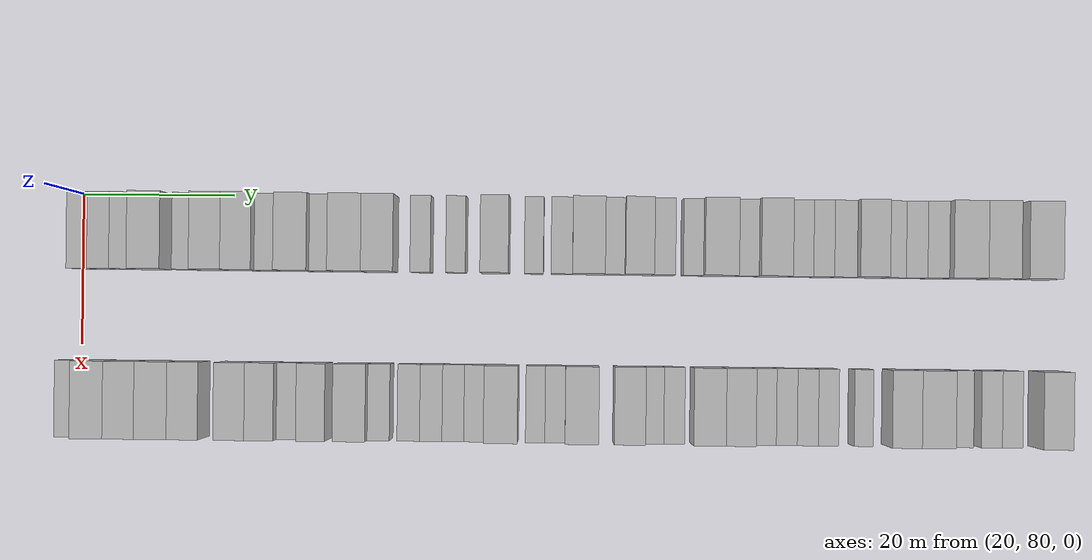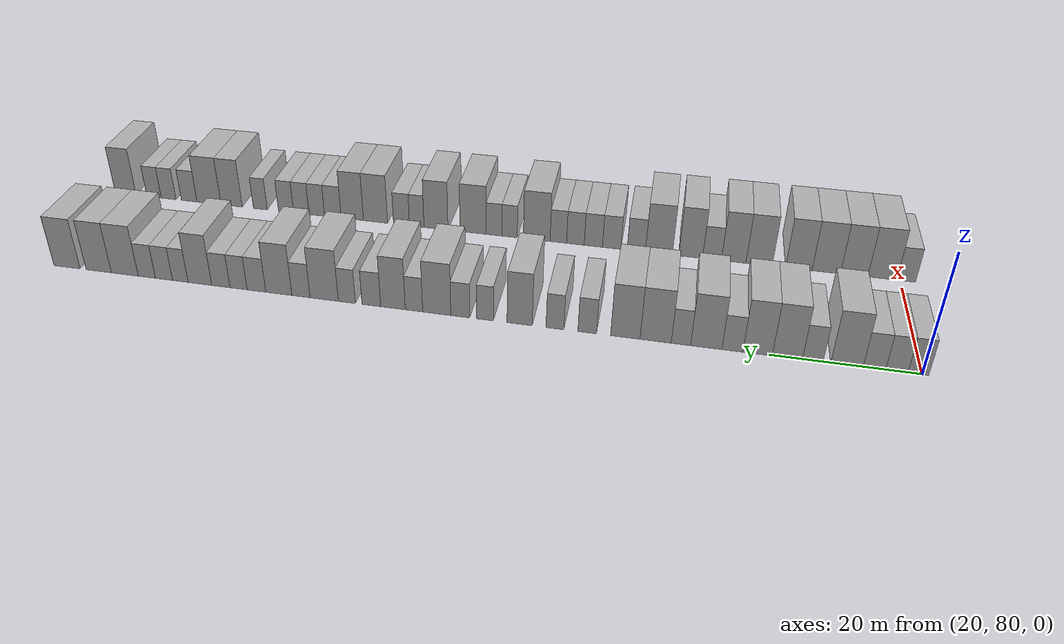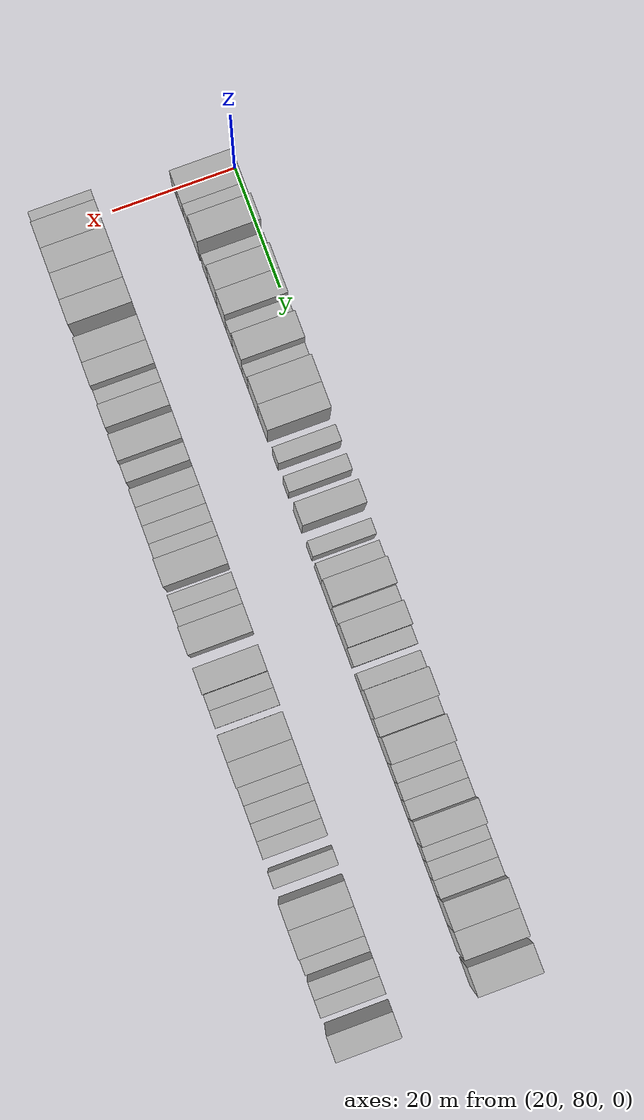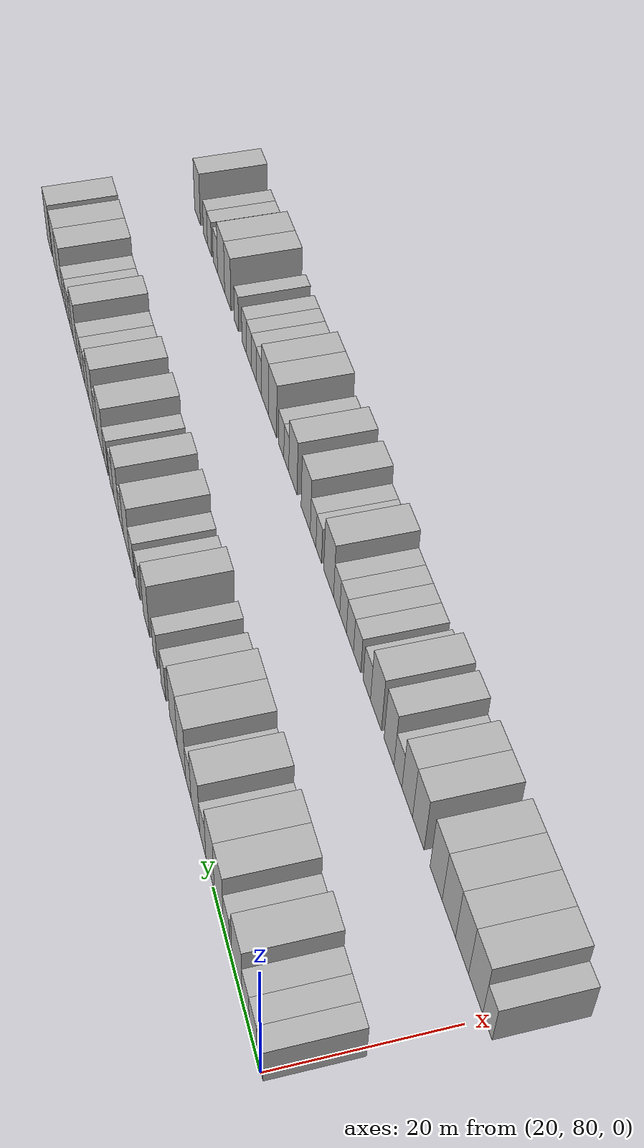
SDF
<sdf version="1.6">
 <world name="default">
  <model name="building_70">
   <static>1</static>
   <pose>25.0000 80.5008 0 0.000000 0.000000 0.000000</pose>
   <link name="link">
    <pose>0 0 3.00 0 0 0</pose>
    <collision name="collision"><geometry><box><size>10.0000 2.6687 6.0000</size></box></geometry></collision>
    <visual name="visual">
     <cast_shadows>0</cast_shadows>
     <geometry><box><size>10.0000 2.6687 6.0000</size></box></geometry>
     <material>
      <script>
       <uri>model://HANNAS_wall/materials/scripts</uri>
       <uri>model://HANNAS_wall/materials/textures</uri>
       <name>vrc/HANNAS_wall</name>
      </script>
     </material>
    </visual>
   </link>
  </model>
  <model name="building_71">
   <static>1</static>
   <pose>25.0000 83.2736 0 0.000000 0.000000 0.000000</pose>
   <link name="link">
    <pose>0 0 3.00 0 0 0</pose>
    <collision name="collision"><geometry><box><size>10.0000 2.8769 6.0000</size></box></geometry></collision>
    <visual name="visual">
     <cast_shadows>0</cast_shadows>
     <geometry><box><size>10.0000 2.8769 6.0000</size></box></geometry>
     <material>
      <script>
       <uri>model://HANNAS_wall/materials/scripts</uri>
       <uri>model://HANNAS_wall/materials/textures</uri>
       <name>vrc/HANNAS_wall</name>
      </script>
     </material>
    </visual>
   </link>
  </model>
  <model name="building_72">
   <static>1</static>
   <pose>25.0000 86.1698 0 0.000000 0.000000 0.000000</pose>
   <link name="link">
    <pose>0 0 3.00 0 0 0</pose>
    <collision name="collision"><geometry><box><size>10.0000 2.9155 6.0000</size></box></geometry></collision>
    <visual name="visual">
     <cast_shadows>0</cast_shadows>
     <geometry><box><size>10.0000 2.9155 6.0000</size></box></geometry>
     <material>
      <script>
       <uri>model://HANNAS_wall/materials/scripts</uri>
       <uri>model://HANNAS_wall/materials/textures</uri>
       <name>vrc/HANNAS_wall</name>
      </script>
     </material>
    </visual>
   </link>
  </model>
  <model name="building_73">
   <static>1</static>
   <pose>25.0000 89.7515 0 0.000000 0.000000 0.000000</pose>
   <link name="link">
    <pose>0 0 4.50 0 0 0</pose>
    <collision name="collision"><geometry><box><size>10.0000 4.2479 9.0000</size></box></geometry></collision>
    <visual name="visual">
     <cast_shadows>0</cast_shadows>
     <geometry><box><size>10.0000 4.2479 9.0000</size></box></geometry>
     <material>
      <script>
       <uri>model://HANNAS_wall/materials/scripts</uri>
       <uri>model://HANNAS_wall/materials/textures</uri>
       <name>vrc/HANNAS_wall</name>
      </script>
     </material>
    </visual>
   </link>
  </model>
  <model name="building_74">
   <static>1</static>
   <pose>25.0000 94.2457 0 0.000000 0.000000 0.000000</pose>
   <link name="link">
    <pose>0 0 3.00 0 0 0</pose>
    <collision name="collision"><geometry><box><size>10.0000 2.7406 6.0000</size></box></geometry></collision>
    <visual name="visual">
     <cast_shadows>0</cast_shadows>
     <geometry><box><size>10.0000 2.7406 6.0000</size></box></geometry>
     <material>
      <script>
       <uri>model://HANNAS_wall/materials/scripts</uri>
       <uri>model://HANNAS_wall/materials/textures</uri>
       <name>vrc/HANNAS_wall</name>
      </script>
     </material>
    </visual>
   </link>
  </model>
  <model name="building_75">
   <static>1</static>
   <pose>25.0000 97.6282 0 0.000000 0.000000 0.000000</pose>
   <link name="link">
    <pose>0 0 4.50 0 0 0</pose>
    <collision name="collision"><geometry><box><size>10.0000 4.0244 9.0000</size></box></geometry></collision>
    <visual name="visual">
     <cast_shadows>0</cast_shadows>
     <geometry><box><size>10.0000 4.0244 9.0000</size></box></geometry>
     <material>
      <script>
       <uri>model://HANNAS_wall/materials/scripts</uri>
       <uri>model://HANNAS_wall/materials/textures</uri>
       <name>vrc/HANNAS_wall</name>
      </script>
     </material>
    </visual>
   </link>
  </model>
  <model name="building_76">
   <static>1</static>
   <pose>25.0000 101.6222 0 0.000000 0.000000 0.000000</pose>
   <link name="link">
    <pose>0 0 4.50 0 0 0</pose>
    <collision name="collision"><geometry><box><size>10.0000 3.9638 9.0000</size></box></geometry></collision>
    <visual name="visual">
     <cast_shadows>0</cast_shadows>
     <geometry><box><size>10.0000 3.9638 9.0000</size></box></geometry>
     <material>
      <script>
       <uri>model://HANNAS_wall/materials/scripts</uri>
       <uri>model://HANNAS_wall/materials/textures</uri>
       <name>vrc/HANNAS_wall</name>
      </script>
     </material>
    </visual>
   </link>
  </model>
  <model name="building_77">
   <static>1</static>
   <pose>25.0000 105.0275 0 0.000000 0.000000 0.000000</pose>
   <link name="link">
    <pose>0 0 3.00 0 0 0</pose>
    <collision name="collision"><geometry><box><size>10.0000 2.8468 6.0000</size></box></geometry></collision>
    <visual name="visual">
     <cast_shadows>0</cast_shadows>
     <geometry><box><size>10.0000 2.8468 6.0000</size></box></geometry>
     <material>
      <script>
       <uri>model://HANNAS_wall/materials/scripts</uri>
       <uri>model://HANNAS_wall/materials/textures</uri>
       <name>vrc/HANNAS_wall</name>
      </script>
     </material>
    </visual>
   </link>
  </model>
  <model name="building_78">
   <static>1</static>
   <pose>25.0000 108.5908 0 0.000000 0.000000 0.000000</pose>
   <link name="link">
    <pose>0 0 4.50 0 0 0</pose>
    <collision name="collision"><geometry><box><size>10.0000 4.2796 9.0000</size></box></geometry></collision>
    <visual name="visual">
     <cast_shadows>0</cast_shadows>
     <geometry><box><size>10.0000 4.2796 9.0000</size></box></geometry>
     <material>
      <script>
       <uri>model://HANNAS_wall/materials/scripts</uri>
       <uri>model://HANNAS_wall/materials/textures</uri>
       <name>vrc/HANNAS_wall</name>
      </script>
     </material>
    </visual>
   </link>
  </model>
  <model name="building_79">
   <static>1</static>
   <pose>25.0000 112.0614 0 0.000000 0.000000 0.000000</pose>
   <link name="link">
    <pose>0 0 3.00 0 0 0</pose>
    <collision name="collision"><geometry><box><size>10.0000 2.6617 6.0000</size></box></geometry></collision>
    <visual name="visual">
     <cast_shadows>0</cast_shadows>
     <geometry><box><size>10.0000 2.6617 6.0000</size></box></geometry>
     <material>
      <script>
       <uri>model://HANNAS_wall/materials/scripts</uri>
       <uri>model://HANNAS_wall/materials/textures</uri>
       <name>vrc/HANNAS_wall</name>
      </script>
     </material>
    </visual>
   </link>
  </model>
  <model name="building_80">
   <static>1</static>
   <pose>25.0000 115.5644 0 0.000000 0.000000 0.000000</pose>
   <link name="link">
    <pose>0 0 4.50 0 0 0</pose>
    <collision name="collision"><geometry><box><size>10.0000 4.3442 9.0000</size></box></geometry></collision>
    <visual name="visual">
     <cast_shadows>0</cast_shadows>
     <geometry><box><size>10.0000 4.3442 9.0000</size></box></geometry>
     <material>
      <script>
       <uri>model://HANNAS_wall/materials/scripts</uri>
       <uri>model://HANNAS_wall/materials/textures</uri>
       <name>vrc/HANNAS_wall</name>
      </script>
     </material>
    </visual>
   </link>
  </model>
  <model name="building_81">
   <static>1</static>
   <pose>25.0000 119.8007 0 0.000000 0.000000 0.000000</pose>
   <link name="link">
    <pose>0 0 4.50 0 0 0</pose>
    <collision name="collision"><geometry><box><size>10.0000 4.1285 9.0000</size></box></geometry></collision>
    <visual name="visual">
     <cast_shadows>0</cast_shadows>
     <geometry><box><size>10.0000 4.1285 9.0000</size></box></geometry>
     <material>
      <script>
       <uri>model://HANNAS_wall/materials/scripts</uri>
       <uri>model://HANNAS_wall/materials/textures</uri>
       <name>vrc/HANNAS_wall</name>
      </script>
     </material>
    </visual>
   </link>
  </model>
  <model name="building_82">
   <static>1</static>
   <pose>25.0000 125.1866 0 0.000000 0.000000 0.000000</pose>
   <link name="link">
    <pose>0 0 3.00 0 0 0</pose>
    <collision name="collision"><geometry><box><size>10.0000 2.6433 6.0000</size></box></geometry></collision>
    <visual name="visual">
     <cast_shadows>0</cast_shadows>
     <geometry><box><size>10.0000 2.6433 6.0000</size></box></geometry>
     <material>
      <script>
       <uri>model://HANNAS_wall/materials/scripts</uri>
       <uri>model://HANNAS_wall/materials/textures</uri>
       <name>vrc/HANNAS_wall</name>
      </script>
     </material>
    </visual>
   </link>
  </model>
  <model name="building_83">
   <static>1</static>
   <pose>25.0000 129.7910 0 0.000000 0.000000 0.000000</pose>
   <link name="link">
    <pose>0 0 3.00 0 0 0</pose>
    <collision name="collision"><geometry><box><size>10.0000 2.5655 6.0000</size></box></geometry></collision>
    <visual name="visual">
     <cast_shadows>0</cast_shadows>
     <geometry><box><size>10.0000 2.5655 6.0000</size></box></geometry>
     <material>
      <script>
       <uri>model://HANNAS_wall/materials/scripts</uri>
       <uri>model://HANNAS_wall/materials/textures</uri>
       <name>vrc/HANNAS_wall</name>
      </script>
     </material>
    </visual>
   </link>
  </model>
  <model name="building_84">
   <static>1</static>
   <pose>25.0000 134.9044 0 0.000000 0.000000 0.000000</pose>
   <link name="link">
    <pose>0 0 4.50 0 0 0</pose>
    <collision name="collision"><geometry><box><size>10.0000 3.6614 9.0000</size></box></geometry></collision>
    <visual name="visual">
     <cast_shadows>0</cast_shadows>
     <geometry><box><size>10.0000 3.6614 9.0000</size></box></geometry>
     <material>
      <script>
       <uri>model://HANNAS_wall/materials/scripts</uri>
       <uri>model://HANNAS_wall/materials/textures</uri>
       <name>vrc/HANNAS_wall</name>
      </script>
     </material>
    </visual>
   </link>
  </model>
  <model name="building_85">
   <static>1</static>
   <pose>25.0000 139.9746 0 0.000000 0.000000 0.000000</pose>
   <link name="link">
    <pose>0 0 3.00 0 0 0</pose>
    <collision name="collision"><geometry><box><size>10.0000 2.4791 6.0000</size></box></geometry></collision>
    <visual name="visual">
     <cast_shadows>0</cast_shadows>
     <geometry><box><size>10.0000 2.4791 6.0000</size></box></geometry>
     <material>
      <script>
       <uri>model://HANNAS_wall/materials/scripts</uri>
       <uri>model://HANNAS_wall/materials/textures</uri>
       <name>vrc/HANNAS_wall</name>
      </script>
     </material>
    </visual>
   </link>
  </model>
  <model name="building_86">
   <static>1</static>
   <pose>25.0000 143.6171 0 0.000000 0.000000 0.000000</pose>
   <link name="link">
    <pose>0 0 3.00 0 0 0</pose>
    <collision name="collision"><geometry><box><size>10.0000 2.8058 6.0000</size></box></geometry></collision>
    <visual name="visual">
     <cast_shadows>0</cast_shadows>
     <geometry><box><size>10.0000 2.8058 6.0000</size></box></geometry>
     <material>
      <script>
       <uri>model://HANNAS_wall/materials/scripts</uri>
       <uri>model://HANNAS_wall/materials/textures</uri>
       <name>vrc/HANNAS_wall</name>
      </script>
     </material>
    </visual>
   </link>
  </model>
  <model name="building_87">
   <static>1</static>
   <pose>25.0000 147.1233 0 0.000000 0.000000 0.000000</pose>
   <link name="link">
    <pose>0 0 4.50 0 0 0</pose>
    <collision name="collision"><geometry><box><size>10.0000 4.2065 9.0000</size></box></geometry></collision>
    <visual name="visual">
     <cast_shadows>0</cast_shadows>
     <geometry><box><size>10.0000 4.2065 9.0000</size></box></geometry>
     <material>
      <script>
       <uri>model://HANNAS_wall/materials/scripts</uri>
       <uri>model://HANNAS_wall/materials/textures</uri>
       <name>vrc/HANNAS_wall</name>
      </script>
     </material>
    </visual>
   </link>
  </model>
  <model name="building_88">
   <static>1</static>
   <pose>25.0000 150.5314 0 0.000000 0.000000 0.000000</pose>
   <link name="link">
    <pose>0 0 3.00 0 0 0</pose>
    <collision name="collision"><geometry><box><size>10.0000 2.6097 6.0000</size></box></geometry></collision>
    <visual name="visual">
     <cast_shadows>0</cast_shadows>
     <geometry><box><size>10.0000 2.6097 6.0000</size></box></geometry>
     <material>
      <script>
       <uri>model://HANNAS_wall/materials/scripts</uri>
       <uri>model://HANNAS_wall/materials/textures</uri>
       <name>vrc/HANNAS_wall</name>
      </script>
     </material>
    </visual>
   </link>
  </model>
  <model name="building_89">
   <static>1</static>
   <pose>25.0000 153.6996 0 0.000000 0.000000 0.000000</pose>
   <link name="link">
    <pose>0 0 4.50 0 0 0</pose>
    <collision name="collision"><geometry><box><size>10.0000 3.7268 9.0000</size></box></geometry></collision>
    <visual name="visual">
     <cast_shadows>0</cast_shadows>
     <geometry><box><size>10.0000 3.7268 9.0000</size></box></geometry>
     <material>
      <script>
       <uri>model://HANNAS_wall/materials/scripts</uri>
       <uri>model://HANNAS_wall/materials/textures</uri>
       <name>vrc/HANNAS_wall</name>
      </script>
     </material>
    </visual>
   </link>
  </model>
  <model name="building_90">
   <static>1</static>
   <pose>25.0000 156.9923 0 0.000000 0.000000 0.000000</pose>
   <link name="link">
    <pose>0 0 3.00 0 0 0</pose>
    <collision name="collision"><geometry><box><size>10.0000 2.8586 6.0000</size></box></geometry></collision>
    <visual name="visual">
     <cast_shadows>0</cast_shadows>
     <geometry><box><size>10.0000 2.8586 6.0000</size></box></geometry>
     <material>
      <script>
       <uri>model://HANNAS_wall/materials/scripts</uri>
       <uri>model://HANNAS_wall/materials/textures</uri>
       <name>vrc/HANNAS_wall</name>
      </script>
     </material>
    </visual>
   </link>
  </model>
  <model name="building_91">
   <static>1</static>
   <pose>25.0000 160.7405 0 0.000000 0.000000 0.000000</pose>
   <link name="link">
    <pose>0 0 3.00 0 0 0</pose>
    <collision name="collision"><geometry><box><size>10.0000 2.6378 6.0000</size></box></geometry></collision>
    <visual name="visual">
     <cast_shadows>0</cast_shadows>
     <geometry><box><size>10.0000 2.6378 6.0000</size></box></geometry>
     <material>
      <script>
       <uri>model://HANNAS_wall/materials/scripts</uri>
       <uri>model://HANNAS_wall/materials/textures</uri>
       <name>vrc/HANNAS_wall</name>
      </script>
     </material>
    </visual>
   </link>
  </model>
  <model name="building_92">
   <static>1</static>
   <pose>25.0000 164.2541 0 0.000000 0.000000 0.000000</pose>
   <link name="link">
    <pose>0 0 4.50 0 0 0</pose>
    <collision name="collision"><geometry><box><size>10.0000 4.3893 9.0000</size></box></geometry></collision>
    <visual name="visual">
     <cast_shadows>0</cast_shadows>
     <geometry><box><size>10.0000 4.3893 9.0000</size></box></geometry>
     <material>
      <script>
       <uri>model://HANNAS_wall/materials/scripts</uri>
       <uri>model://HANNAS_wall/materials/textures</uri>
       <name>vrc/HANNAS_wall</name>
      </script>
     </material>
    </visual>
   </link>
  </model>
  <model name="building_93">
   <static>1</static>
   <pose>25.0000 167.8694 0 0.000000 0.000000 0.000000</pose>
   <link name="link">
    <pose>0 0 3.00 0 0 0</pose>
    <collision name="collision"><geometry><box><size>10.0000 2.8413 6.0000</size></box></geometry></collision>
    <visual name="visual">
     <cast_shadows>0</cast_shadows>
     <geometry><box><size>10.0000 2.8413 6.0000</size></box></geometry>
     <material>
      <script>
       <uri>model://HANNAS_wall/materials/scripts</uri>
       <uri>model://HANNAS_wall/materials/textures</uri>
       <name>vrc/HANNAS_wall</name>
      </script>
     </material>
    </visual>
   </link>
  </model>
  <model name="building_94">
   <static>1</static>
   <pose>25.0000 171.3452 0 0.000000 0.000000 0.000000</pose>
   <link name="link">
    <pose>0 0 4.50 0 0 0</pose>
    <collision name="collision"><geometry><box><size>10.0000 4.1103 9.0000</size></box></geometry></collision>
    <visual name="visual">
     <cast_shadows>0</cast_shadows>
     <geometry><box><size>10.0000 4.1103 9.0000</size></box></geometry>
     <material>
      <script>
       <uri>model://HANNAS_wall/materials/scripts</uri>
       <uri>model://HANNAS_wall/materials/textures</uri>
       <name>vrc/HANNAS_wall</name>
      </script>
     </material>
    </visual>
   </link>
  </model>
  <model name="building_95">
   <static>1</static>
   <pose>25.0000 174.8826 0 0.000000 0.000000 0.000000</pose>
   <link name="link">
    <pose>0 0 3.00 0 0 0</pose>
    <collision name="collision"><geometry><box><size>10.0000 2.9645 6.0000</size></box></geometry></collision>
    <visual name="visual">
     <cast_shadows>0</cast_shadows>
     <geometry><box><size>10.0000 2.9645 6.0000</size></box></geometry>
     <material>
      <script>
       <uri>model://HANNAS_wall/materials/scripts</uri>
       <uri>model://HANNAS_wall/materials/textures</uri>
       <name>vrc/HANNAS_wall</name>
      </script>
     </material>
    </visual>
   </link>
  </model>
  <model name="building_96">
   <static>1</static>
   <pose>25.0000 177.7312 0 0.000000 0.000000 0.000000</pose>
   <link name="link">
    <pose>0 0 3.00 0 0 0</pose>
    <collision name="collision"><geometry><box><size>10.0000 2.7327 6.0000</size></box></geometry></collision>
    <visual name="visual">
     <cast_shadows>0</cast_shadows>
     <geometry><box><size>10.0000 2.7327 6.0000</size></box></geometry>
     <material>
      <script>
       <uri>model://HANNAS_wall/materials/scripts</uri>
       <uri>model://HANNAS_wall/materials/textures</uri>
       <name>vrc/HANNAS_wall</name>
      </script>
     </material>
    </visual>
   </link>
  </model>
  <model name="building_97">
   <static>1</static>
   <pose>25.0000 180.5658 0 0.000000 0.000000 0.000000</pose>
   <link name="link">
    <pose>0 0 3.00 0 0 0</pose>
    <collision name="collision"><geometry><box><size>10.0000 2.9365 6.0000</size></box></geometry></collision>
    <visual name="visual">
     <cast_shadows>0</cast_shadows>
     <geometry><box><size>10.0000 2.9365 6.0000</size></box></geometry>
     <material>
      <script>
       <uri>model://HANNAS_wall/materials/scripts</uri>
       <uri>model://HANNAS_wall/materials/textures</uri>
       <name>vrc/HANNAS_wall</name>
      </script>
     </material>
    </visual>
   </link>
  </model>
  <model name="building_98">
   <static>1</static>
   <pose>25.0000 183.9489 0 0.000000 0.000000 0.000000</pose>
   <link name="link">
    <pose>0 0 4.50 0 0 0</pose>
    <collision name="collision"><geometry><box><size>10.0000 3.8297 9.0000</size></box></geometry></collision>
    <visual name="visual">
     <cast_shadows>0</cast_shadows>
     <geometry><box><size>10.0000 3.8297 9.0000</size></box></geometry>
     <material>
      <script>
       <uri>model://HANNAS_wall/materials/scripts</uri>
       <uri>model://HANNAS_wall/materials/textures</uri>
       <name>vrc/HANNAS_wall</name>
      </script>
     </material>
    </visual>
   </link>
  </model>
  <model name="building_99">
   <static>1</static>
   <pose>25.0000 187.1322 0 0.000000 0.000000 0.000000</pose>
   <link name="link">
    <pose>0 0 3.00 0 0 0</pose>
    <collision name="collision"><geometry><box><size>10.0000 2.5370 6.0000</size></box></geometry></collision>
    <visual name="visual">
     <cast_shadows>0</cast_shadows>
     <geometry><box><size>10.0000 2.5370 6.0000</size></box></geometry>
     <material>
      <script>
       <uri>model://HANNAS_wall/materials/scripts</uri>
       <uri>model://HANNAS_wall/materials/textures</uri>
       <name>vrc/HANNAS_wall</name>
      </script>
     </material>
    </visual>
   </link>
  </model>
  <model name="building_100">
   <static>1</static>
   <pose>25.0000 189.8058 0 0.000000 0.000000 0.000000</pose>
   <link name="link">
    <pose>0 0 3.00 0 0 0</pose>
    <collision name="collision"><geometry><box><size>10.0000 2.8101 6.0000</size></box></geometry></collision>
    <visual name="visual">
     <cast_shadows>0</cast_shadows>
     <geometry><box><size>10.0000 2.8101 6.0000</size></box></geometry>
     <material>
      <script>
       <uri>model://HANNAS_wall/materials/scripts</uri>
       <uri>model://HANNAS_wall/materials/textures</uri>
       <name>vrc/HANNAS_wall</name>
      </script>
     </material>
    </visual>
   </link>
  </model>
  <model name="building_101">
   <static>1</static>
   <pose>25.0000 192.6239 0 0.000000 0.000000 0.000000</pose>
   <link name="link">
    <pose>0 0 3.00 0 0 0</pose>
    <collision name="collision"><geometry><box><size>10.0000 2.8261 6.0000</size></box></geometry></collision>
    <visual name="visual">
     <cast_shadows>0</cast_shadows>
     <geometry><box><size>10.0000 2.8261 6.0000</size></box></geometry>
     <material>
      <script>
       <uri>model://HANNAS_wall/materials/scripts</uri>
       <uri>model://HANNAS_wall/materials/textures</uri>
       <name>vrc/HANNAS_wall</name>
      </script>
     </material>
    </visual>
   </link>
  </model>
  <model name="building_102">
   <static>1</static>
   <pose>25.0000 196.2764 0 0.000000 0.000000 0.000000</pose>
   <link name="link">
    <pose>0 0 4.50 0 0 0</pose>
    <collision name="collision"><geometry><box><size>10.0000 4.4790 9.0000</size></box></geometry></collision>
    <visual name="visual">
     <cast_shadows>0</cast_shadows>
     <geometry><box><size>10.0000 4.4790 9.0000</size></box></geometry>
     <material>
      <script>
       <uri>model://HANNAS_wall/materials/scripts</uri>
       <uri>model://HANNAS_wall/materials/textures</uri>
       <name>vrc/HANNAS_wall</name>
      </script>
     </material>
    </visual>
   </link>
  </model>
  <model name="building_103">
   <static>1</static>
   <pose>25.0000 200.6381 0 0.000000 0.000000 0.000000</pose>
   <link name="link">
    <pose>0 0 4.50 0 0 0</pose>
    <collision name="collision"><geometry><box><size>10.0000 4.2443 9.0000</size></box></geometry></collision>
    <visual name="visual">
     <cast_shadows>0</cast_shadows>
     <geometry><box><size>10.0000 4.2443 9.0000</size></box></geometry>
     <material>
      <script>
       <uri>model://HANNAS_wall/materials/scripts</uri>
       <uri>model://HANNAS_wall/materials/textures</uri>
       <name>vrc/HANNAS_wall</name>
      </script>
     </material>
    </visual>
   </link>
  </model>
  <model name="building_104">
   <static>1</static>
   <pose>25.0000 205.9755 0 0.000000 0.000000 0.000000</pose>
   <link name="link">
    <pose>0 0 4.50 0 0 0</pose>
    <collision name="collision"><geometry><box><size>10.0000 4.4305 9.0000</size></box></geometry></collision>
    <visual name="visual">
     <cast_shadows>0</cast_shadows>
     <geometry><box><size>10.0000 4.4305 9.0000</size></box></geometry>
     <material>
      <script>
       <uri>model://HANNAS_wall/materials/scripts</uri>
       <uri>model://HANNAS_wall/materials/textures</uri>
       <name>vrc/HANNAS_wall</name>
      </script>
     </material>
    </visual>
   </link>
  </model>
  <model name="building_176">
   <static>1</static>
   <pose>47.0000 79.1906 0 0.000000 0.000000 0.000000</pose>
   <link name="link">
    <pose>0 0 3.00 0 0 0</pose>
    <collision name="collision"><geometry><box><size>10.0000 2.7200 6.0000</size></box></geometry></collision>
    <visual name="visual">
     <cast_shadows>0</cast_shadows>
     <geometry><box><size>10.0000 2.7200 6.0000</size></box></geometry>
     <material>
      <script>
       <uri>model://HANNAS_wall/materials/scripts</uri>
       <uri>model://HANNAS_wall/materials/textures</uri>
       <name>vrc/HANNAS_wall</name>
      </script>
     </material>
    </visual>
   </link>
  </model>
  <model name="building_177">
   <static>1</static>
   <pose>47.0000 82.6649 0 0.000000 0.000000 0.000000</pose>
   <link name="link">
    <pose>0 0 4.50 0 0 0</pose>
    <collision name="collision"><geometry><box><size>10.0000 4.2286 9.0000</size></box></geometry></collision>
    <visual name="visual">
     <cast_shadows>0</cast_shadows>
     <geometry><box><size>10.0000 4.2286 9.0000</size></box></geometry>
     <material>
      <script>
       <uri>model://HANNAS_wall/materials/scripts</uri>
       <uri>model://HANNAS_wall/materials/textures</uri>
       <name>vrc/HANNAS_wall</name>
      </script>
     </material>
    </visual>
   </link>
  </model>
  <model name="building_178">
   <static>1</static>
   <pose>47.0000 86.7958 0 0.000000 0.000000 0.000000</pose>
   <link name="link">
    <pose>0 0 4.50 0 0 0</pose>
    <collision name="collision"><geometry><box><size>10.0000 4.0332 9.0000</size></box></geometry></collision>
    <visual name="visual">
     <cast_shadows>0</cast_shadows>
     <geometry><box><size>10.0000 4.0332 9.0000</size></box></geometry>
     <material>
      <script>
       <uri>model://HANNAS_wall/materials/scripts</uri>
       <uri>model://HANNAS_wall/materials/textures</uri>
       <name>vrc/HANNAS_wall</name>
      </script>
     </material>
    </visual>
   </link>
  </model>
  <model name="building_179">
   <static>1</static>
   <pose>47.0000 90.9257 0 0.000000 0.000000 0.000000</pose>
   <link name="link">
    <pose>0 0 4.50 0 0 0</pose>
    <collision name="collision"><geometry><box><size>10.0000 4.2267 9.0000</size></box></geometry></collision>
    <visual name="visual">
     <cast_shadows>0</cast_shadows>
     <geometry><box><size>10.0000 4.2267 9.0000</size></box></geometry>
     <material>
      <script>
       <uri>model://HANNAS_wall/materials/scripts</uri>
       <uri>model://HANNAS_wall/materials/textures</uri>
       <name>vrc/HANNAS_wall</name>
      </script>
     </material>
    </visual>
   </link>
  </model>
  <model name="building_180">
   <static>1</static>
   <pose>47.0000 95.0309 0 0.000000 0.000000 0.000000</pose>
   <link name="link">
    <pose>0 0 4.50 0 0 0</pose>
    <collision name="collision"><geometry><box><size>10.0000 3.9837 9.0000</size></box></geometry></collision>
    <visual name="visual">
     <cast_shadows>0</cast_shadows>
     <geometry><box><size>10.0000 3.9837 9.0000</size></box></geometry>
     <material>
      <script>
       <uri>model://HANNAS_wall/materials/scripts</uri>
       <uri>model://HANNAS_wall/materials/textures</uri>
       <name>vrc/HANNAS_wall</name>
      </script>
     </material>
    </visual>
   </link>
  </model>
  <model name="building_181">
   <static>1</static>
   <pose>47.0000 101.0150 0 0.000000 0.000000 0.000000</pose>
   <link name="link">
    <pose>0 0 4.50 0 0 0</pose>
    <collision name="collision"><geometry><box><size>10.0000 3.9844 9.0000</size></box></geometry></collision>
    <visual name="visual">
     <cast_shadows>0</cast_shadows>
     <geometry><box><size>10.0000 3.9844 9.0000</size></box></geometry>
     <material>
      <script>
       <uri>model://HANNAS_wall/materials/scripts</uri>
       <uri>model://HANNAS_wall/materials/textures</uri>
       <name>vrc/HANNAS_wall</name>
      </script>
     </material>
    </visual>
   </link>
  </model>
  <model name="building_182">
   <static>1</static>
   <pose>47.0000 104.8762 0 0.000000 0.000000 0.000000</pose>
   <link name="link">
    <pose>0 0 4.50 0 0 0</pose>
    <collision name="collision"><geometry><box><size>10.0000 3.7380 9.0000</size></box></geometry></collision>
    <visual name="visual">
     <cast_shadows>0</cast_shadows>
     <geometry><box><size>10.0000 3.7380 9.0000</size></box></geometry>
     <material>
      <script>
       <uri>model://HANNAS_wall/materials/scripts</uri>
       <uri>model://HANNAS_wall/materials/textures</uri>
       <name>vrc/HANNAS_wall</name>
      </script>
     </material>
    </visual>
   </link>
  </model>
  <model name="building_183">
   <static>1</static>
   <pose>47.0000 108.1993 0 0.000000 0.000000 0.000000</pose>
   <link name="link">
    <pose>0 0 3.00 0 0 0</pose>
    <collision name="collision"><geometry><box><size>10.0000 2.9083 6.0000</size></box></geometry></collision>
    <visual name="visual">
     <cast_shadows>0</cast_shadows>
     <geometry><box><size>10.0000 2.9083 6.0000</size></box></geometry>
     <material>
      <script>
       <uri>model://HANNAS_wall/materials/scripts</uri>
       <uri>model://HANNAS_wall/materials/textures</uri>
       <name>vrc/HANNAS_wall</name>
      </script>
     </material>
    </visual>
   </link>
  </model>
  <model name="building_184">
   <static>1</static>
   <pose>47.0000 111.4983 0 0.000000 0.000000 0.000000</pose>
   <link name="link">
    <pose>0 0 4.50 0 0 0</pose>
    <collision name="collision"><geometry><box><size>10.0000 3.6897 9.0000</size></box></geometry></collision>
    <visual name="visual">
     <cast_shadows>0</cast_shadows>
     <geometry><box><size>10.0000 3.6897 9.0000</size></box></geometry>
     <material>
      <script>
       <uri>model://HANNAS_wall/materials/scripts</uri>
       <uri>model://HANNAS_wall/materials/textures</uri>
       <name>vrc/HANNAS_wall</name>
      </script>
     </material>
    </visual>
   </link>
  </model>
  <model name="building_185">
   <static>1</static>
   <pose>47.0000 116.4499 0 0.000000 0.000000 0.000000</pose>
   <link name="link">
    <pose>0 0 4.50 0 0 0</pose>
    <collision name="collision"><geometry><box><size>10.0000 4.2136 9.0000</size></box></geometry></collision>
    <visual name="visual">
     <cast_shadows>0</cast_shadows>
     <geometry><box><size>10.0000 4.2136 9.0000</size></box></geometry>
     <material>
      <script>
       <uri>model://HANNAS_wall/materials/scripts</uri>
       <uri>model://HANNAS_wall/materials/textures</uri>
       <name>vrc/HANNAS_wall</name>
      </script>
     </material>
    </visual>
   </link>
  </model>
  <model name="building_186">
   <static>1</static>
   <pose>47.0000 120.0003 0 0.000000 0.000000 0.000000</pose>
   <link name="link">
    <pose>0 0 3.00 0 0 0</pose>
    <collision name="collision"><geometry><box><size>10.0000 2.8871 6.0000</size></box></geometry></collision>
    <visual name="visual">
     <cast_shadows>0</cast_shadows>
     <geometry><box><size>10.0000 2.8871 6.0000</size></box></geometry>
     <material>
      <script>
       <uri>model://HANNAS_wall/materials/scripts</uri>
       <uri>model://HANNAS_wall/materials/textures</uri>
       <name>vrc/HANNAS_wall</name>
      </script>
     </material>
    </visual>
   </link>
  </model>
  <model name="building_187">
   <static>1</static>
   <pose>47.0000 123.9066 0 0.000000 0.000000 0.000000</pose>
   <link name="link">
    <pose>0 0 3.00 0 0 0</pose>
    <collision name="collision"><geometry><box><size>10.0000 2.9255 6.0000</size></box></geometry></collision>
    <visual name="visual">
     <cast_shadows>0</cast_shadows>
     <geometry><box><size>10.0000 2.9255 6.0000</size></box></geometry>
     <material>
      <script>
       <uri>model://HANNAS_wall/materials/scripts</uri>
       <uri>model://HANNAS_wall/materials/textures</uri>
       <name>vrc/HANNAS_wall</name>
      </script>
     </material>
    </visual>
   </link>
  </model>
  <model name="building_188">
   <static>1</static>
   <pose>47.0000 126.8289 0 0.000000 0.000000 0.000000</pose>
   <link name="link">
    <pose>0 0 3.00 0 0 0</pose>
    <collision name="collision"><geometry><box><size>10.0000 2.9191 6.0000</size></box></geometry></collision>
    <visual name="visual">
     <cast_shadows>0</cast_shadows>
     <geometry><box><size>10.0000 2.9191 6.0000</size></box></geometry>
     <material>
      <script>
       <uri>model://HANNAS_wall/materials/scripts</uri>
       <uri>model://HANNAS_wall/materials/textures</uri>
       <name>vrc/HANNAS_wall</name>
      </script>
     </material>
    </visual>
   </link>
  </model>
  <model name="building_189">
   <static>1</static>
   <pose>47.0000 129.7063 0 0.000000 0.000000 0.000000</pose>
   <link name="link">
    <pose>0 0 3.00 0 0 0</pose>
    <collision name="collision"><geometry><box><size>10.0000 2.8358 6.0000</size></box></geometry></collision>
    <visual name="visual">
     <cast_shadows>0</cast_shadows>
     <geometry><box><size>10.0000 2.8358 6.0000</size></box></geometry>
     <material>
      <script>
       <uri>model://HANNAS_wall/materials/scripts</uri>
       <uri>model://HANNAS_wall/materials/textures</uri>
       <name>vrc/HANNAS_wall</name>
      </script>
     </material>
    </visual>
   </link>
  </model>
  <model name="building_190">
   <static>1</static>
   <pose>47.0000 132.4547 0 0.000000 0.000000 0.000000</pose>
   <link name="link">
    <pose>0 0 3.00 0 0 0</pose>
    <collision name="collision"><geometry><box><size>10.0000 2.6610 6.0000</size></box></geometry></collision>
    <visual name="visual">
     <cast_shadows>0</cast_shadows>
     <geometry><box><size>10.0000 2.6610 6.0000</size></box></geometry>
     <material>
      <script>
       <uri>model://HANNAS_wall/materials/scripts</uri>
       <uri>model://HANNAS_wall/materials/textures</uri>
       <name>vrc/HANNAS_wall</name>
      </script>
     </material>
    </visual>
   </link>
  </model>
  <model name="building_191">
   <static>1</static>
   <pose>47.0000 135.9613 0 0.000000 0.000000 0.000000</pose>
   <link name="link">
    <pose>0 0 4.50 0 0 0</pose>
    <collision name="collision"><geometry><box><size>10.0000 4.3522 9.0000</size></box></geometry></collision>
    <visual name="visual">
     <cast_shadows>0</cast_shadows>
     <geometry><box><size>10.0000 4.3522 9.0000</size></box></geometry>
     <material>
      <script>
       <uri>model://HANNAS_wall/materials/scripts</uri>
       <uri>model://HANNAS_wall/materials/textures</uri>
       <name>vrc/HANNAS_wall</name>
      </script>
     </material>
    </visual>
   </link>
  </model>
  <model name="building_192">
   <static>1</static>
   <pose>47.0000 140.4027 0 0.000000 0.000000 0.000000</pose>
   <link name="link">
    <pose>0 0 3.00 0 0 0</pose>
    <collision name="collision"><geometry><box><size>10.0000 2.5306 6.0000</size></box></geometry></collision>
    <visual name="visual">
     <cast_shadows>0</cast_shadows>
     <geometry><box><size>10.0000 2.5306 6.0000</size></box></geometry>
     <material>
      <script>
       <uri>model://HANNAS_wall/materials/scripts</uri>
       <uri>model://HANNAS_wall/materials/textures</uri>
       <name>vrc/HANNAS_wall</name>
      </script>
     </material>
    </visual>
   </link>
  </model>
  <model name="building_193">
   <static>1</static>
   <pose>47.0000 142.9789 0 0.000000 0.000000 0.000000</pose>
   <link name="link">
    <pose>0 0 3.00 0 0 0</pose>
    <collision name="collision"><geometry><box><size>10.0000 2.6219 6.0000</size></box></geometry></collision>
    <visual name="visual">
     <cast_shadows>0</cast_shadows>
     <geometry><box><size>10.0000 2.6219 6.0000</size></box></geometry>
     <material>
      <script>
       <uri>model://HANNAS_wall/materials/scripts</uri>
       <uri>model://HANNAS_wall/materials/textures</uri>
       <name>vrc/HANNAS_wall</name>
      </script>
     </material>
    </visual>
   </link>
  </model>
  <model name="building_194">
   <static>1</static>
   <pose>47.0000 146.4552 0 0.000000 0.000000 0.000000</pose>
   <link name="link">
    <pose>0 0 4.50 0 0 0</pose>
    <collision name="collision"><geometry><box><size>10.0000 4.3307 9.0000</size></box></geometry></collision>
    <visual name="visual">
     <cast_shadows>0</cast_shadows>
     <geometry><box><size>10.0000 4.3307 9.0000</size></box></geometry>
     <material>
      <script>
       <uri>model://HANNAS_wall/materials/scripts</uri>
       <uri>model://HANNAS_wall/materials/textures</uri>
       <name>vrc/HANNAS_wall</name>
      </script>
     </material>
    </visual>
   </link>
  </model>
  <model name="building_195">
   <static>1</static>
   <pose>47.0000 152.6390 0 0.000000 0.000000 0.000000</pose>
   <link name="link">
    <pose>0 0 4.50 0 0 0</pose>
    <collision name="collision"><geometry><box><size>10.0000 4.0368 9.0000</size></box></geometry></collision>
    <visual name="visual">
     <cast_shadows>0</cast_shadows>
     <geometry><box><size>10.0000 4.0368 9.0000</size></box></geometry>
     <material>
      <script>
       <uri>model://HANNAS_wall/materials/scripts</uri>
       <uri>model://HANNAS_wall/materials/textures</uri>
       <name>vrc/HANNAS_wall</name>
      </script>
     </material>
    </visual>
   </link>
  </model>
  <model name="building_196">
   <static>1</static>
   <pose>47.0000 155.8919 0 0.000000 0.000000 0.000000</pose>
   <link name="link">
    <pose>0 0 3.00 0 0 0</pose>
    <collision name="collision"><geometry><box><size>10.0000 2.4691 6.0000</size></box></geometry></collision>
    <visual name="visual">
     <cast_shadows>0</cast_shadows>
     <geometry><box><size>10.0000 2.4691 6.0000</size></box></geometry>
     <material>
      <script>
       <uri>model://HANNAS_wall/materials/scripts</uri>
       <uri>model://HANNAS_wall/materials/textures</uri>
       <name>vrc/HANNAS_wall</name>
      </script>
     </material>
    </visual>
   </link>
  </model>
  <model name="building_197">
   <static>1</static>
   <pose>47.0000 158.4852 0 0.000000 0.000000 0.000000</pose>
   <link name="link">
    <pose>0 0 3.00 0 0 0</pose>
    <collision name="collision"><geometry><box><size>10.0000 2.7174 6.0000</size></box></geometry></collision>
    <visual name="visual">
     <cast_shadows>0</cast_shadows>
     <geometry><box><size>10.0000 2.7174 6.0000</size></box></geometry>
     <material>
      <script>
       <uri>model://HANNAS_wall/materials/scripts</uri>
       <uri>model://HANNAS_wall/materials/textures</uri>
       <name>vrc/HANNAS_wall</name>
      </script>
     </material>
    </visual>
   </link>
  </model>
  <model name="building_198">
   <static>1</static>
   <pose>47.0000 162.9236 0 0.000000 0.000000 0.000000</pose>
   <link name="link">
    <pose>0 0 4.50 0 0 0</pose>
    <collision name="collision"><geometry><box><size>10.0000 4.1594 9.0000</size></box></geometry></collision>
    <visual name="visual">
     <cast_shadows>0</cast_shadows>
     <geometry><box><size>10.0000 4.1594 9.0000</size></box></geometry>
     <material>
      <script>
       <uri>model://HANNAS_wall/materials/scripts</uri>
       <uri>model://HANNAS_wall/materials/textures</uri>
       <name>vrc/HANNAS_wall</name>
      </script>
     </material>
    </visual>
   </link>
  </model>
  <model name="building_199">
   <static>1</static>
   <pose>47.0000 166.9314 0 0.000000 0.000000 0.000000</pose>
   <link name="link">
    <pose>0 0 4.50 0 0 0</pose>
    <collision name="collision"><geometry><box><size>10.0000 3.8562 9.0000</size></box></geometry></collision>
    <visual name="visual">
     <cast_shadows>0</cast_shadows>
     <geometry><box><size>10.0000 3.8562 9.0000</size></box></geometry>
     <material>
      <script>
       <uri>model://HANNAS_wall/materials/scripts</uri>
       <uri>model://HANNAS_wall/materials/textures</uri>
       <name>vrc/HANNAS_wall</name>
      </script>
     </material>
    </visual>
   </link>
  </model>
  <model name="building_200">
   <static>1</static>
   <pose>47.0000 170.3104 0 0.000000 0.000000 0.000000</pose>
   <link name="link">
    <pose>0 0 3.00 0 0 0</pose>
    <collision name="collision"><geometry><box><size>10.0000 2.9017 6.0000</size></box></geometry></collision>
    <visual name="visual">
     <cast_shadows>0</cast_shadows>
     <geometry><box><size>10.0000 2.9017 6.0000</size></box></geometry>
     <material>
      <script>
       <uri>model://HANNAS_wall/materials/scripts</uri>
       <uri>model://HANNAS_wall/materials/textures</uri>
       <name>vrc/HANNAS_wall</name>
      </script>
     </material>
    </visual>
   </link>
  </model>
  <model name="building_201">
   <static>1</static>
   <pose>47.0000 173.1195 0 0.000000 0.000000 0.000000</pose>
   <link name="link">
    <pose>0 0 3.00 0 0 0</pose>
    <collision name="collision"><geometry><box><size>10.0000 2.7166 6.0000</size></box></geometry></collision>
    <visual name="visual">
     <cast_shadows>0</cast_shadows>
     <geometry><box><size>10.0000 2.7166 6.0000</size></box></geometry>
     <material>
      <script>
       <uri>model://HANNAS_wall/materials/scripts</uri>
       <uri>model://HANNAS_wall/materials/textures</uri>
       <name>vrc/HANNAS_wall</name>
      </script>
     </material>
    </visual>
   </link>
  </model>
  <model name="building_202">
   <static>1</static>
   <pose>47.0000 175.8428 0 0.000000 0.000000 0.000000</pose>
   <link name="link">
    <pose>0 0 3.00 0 0 0</pose>
    <collision name="collision"><geometry><box><size>10.0000 2.7299 6.0000</size></box></geometry></collision>
    <visual name="visual">
     <cast_shadows>0</cast_shadows>
     <geometry><box><size>10.0000 2.7299 6.0000</size></box></geometry>
     <material>
      <script>
       <uri>model://HANNAS_wall/materials/scripts</uri>
       <uri>model://HANNAS_wall/materials/textures</uri>
       <name>vrc/HANNAS_wall</name>
      </script>
     </material>
    </visual>
   </link>
  </model>
  <model name="building_203">
   <static>1</static>
   <pose>47.0000 178.5427 0 0.000000 0.000000 0.000000</pose>
   <link name="link">
    <pose>0 0 3.00 0 0 0</pose>
    <collision name="collision"><geometry><box><size>10.0000 2.6700 6.0000</size></box></geometry></collision>
    <visual name="visual">
     <cast_shadows>0</cast_shadows>
     <geometry><box><size>10.0000 2.6700 6.0000</size></box></geometry>
     <material>
      <script>
       <uri>model://HANNAS_wall/materials/scripts</uri>
       <uri>model://HANNAS_wall/materials/textures</uri>
       <name>vrc/HANNAS_wall</name>
      </script>
     </material>
    </visual>
   </link>
  </model>
  <model name="building_204">
   <static>1</static>
   <pose>47.0000 183.1147 0 0.000000 0.000000 0.000000</pose>
   <link name="link">
    <pose>0 0 3.00 0 0 0</pose>
    <collision name="collision"><geometry><box><size>10.0000 2.4741 6.0000</size></box></geometry></collision>
    <visual name="visual">
     <cast_shadows>0</cast_shadows>
     <geometry><box><size>10.0000 2.4741 6.0000</size></box></geometry>
     <material>
      <script>
       <uri>model://HANNAS_wall/materials/scripts</uri>
       <uri>model://HANNAS_wall/materials/textures</uri>
       <name>vrc/HANNAS_wall</name>
      </script>
     </material>
    </visual>
   </link>
  </model>
  <model name="building_205">
   <static>1</static>
   <pose>47.0000 188.2757 0 0.000000 0.000000 0.000000</pose>
   <link name="link">
    <pose>0 0 4.50 0 0 0</pose>
    <collision name="collision"><geometry><box><size>10.0000 3.8480 9.0000</size></box></geometry></collision>
    <visual name="visual">
     <cast_shadows>0</cast_shadows>
     <geometry><box><size>10.0000 3.8480 9.0000</size></box></geometry>
     <material>
      <script>
       <uri>model://HANNAS_wall/materials/scripts</uri>
       <uri>model://HANNAS_wall/materials/textures</uri>
       <name>vrc/HANNAS_wall</name>
      </script>
     </material>
    </visual>
   </link>
  </model>
  <model name="building_206">
   <static>1</static>
   <pose>47.0000 192.3821 0 0.000000 0.000000 0.000000</pose>
   <link name="link">
    <pose>0 0 4.50 0 0 0</pose>
    <collision name="collision"><geometry><box><size>10.0000 4.3647 9.0000</size></box></geometry></collision>
    <visual name="visual">
     <cast_shadows>0</cast_shadows>
     <geometry><box><size>10.0000 4.3647 9.0000</size></box></geometry>
     <material>
      <script>
       <uri>model://HANNAS_wall/materials/scripts</uri>
       <uri>model://HANNAS_wall/materials/textures</uri>
       <name>vrc/HANNAS_wall</name>
      </script>
     </material>
    </visual>
   </link>
  </model>
  <model name="building_207">
   <static>1</static>
   <pose>47.0000 195.9886 0 0.000000 0.000000 0.000000</pose>
   <link name="link">
    <pose>0 0 3.00 0 0 0</pose>
    <collision name="collision"><geometry><box><size>10.0000 2.8484 6.0000</size></box></geometry></collision>
    <visual name="visual">
     <cast_shadows>0</cast_shadows>
     <geometry><box><size>10.0000 2.8484 6.0000</size></box></geometry>
     <material>
      <script>
       <uri>model://HANNAS_wall/materials/scripts</uri>
       <uri>model://HANNAS_wall/materials/textures</uri>
       <name>vrc/HANNAS_wall</name>
      </script>
     </material>
    </visual>
   </link>
  </model>
  <model name="building_208">
   <static>1</static>
   <pose>47.0000 199.7781 0 0.000000 0.000000 0.000000</pose>
   <link name="link">
    <pose>0 0 3.00 0 0 0</pose>
    <collision name="collision"><geometry><box><size>10.0000 2.7307 6.0000</size></box></geometry></collision>
    <visual name="visual">
     <cast_shadows>0</cast_shadows>
     <geometry><box><size>10.0000 2.7307 6.0000</size></box></geometry>
     <material>
      <script>
       <uri>model://HANNAS_wall/materials/scripts</uri>
       <uri>model://HANNAS_wall/materials/textures</uri>
       <name>vrc/HANNAS_wall</name>
      </script>
     </material>
    </visual>
   </link>
  </model>
  <model name="building_209">
   <static>1</static>
   <pose>47.0000 202.4724 0 0.000000 0.000000 0.000000</pose>
   <link name="link">
    <pose>0 0 3.00 0 0 0</pose>
    <collision name="collision"><geometry><box><size>10.0000 2.6579 6.0000</size></box></geometry></collision>
    <visual name="visual">
     <cast_shadows>0</cast_shadows>
     <geometry><box><size>10.0000 2.6579 6.0000</size></box></geometry>
     <material>
      <script>
       <uri>model://HANNAS_wall/materials/scripts</uri>
       <uri>model://HANNAS_wall/materials/textures</uri>
       <name>vrc/HANNAS_wall</name>
      </script>
     </material>
    </visual>
   </link>
  </model>
  <model name="building_210">
   <static>1</static>
   <pose>47.0000 207.7484 0 0.000000 0.000000 0.000000</pose>
   <link name="link">
    <pose>0 0 4.50 0 0 0</pose>
    <collision name="collision"><geometry><box><size>10.0000 3.8941 9.0000</size></box></geometry></collision>
    <visual name="visual">
     <cast_shadows>0</cast_shadows>
     <geometry><box><size>10.0000 3.8941 9.0000</size></box></geometry>
     <material>
      <script>
       <uri>model://HANNAS_wall/materials/scripts</uri>
       <uri>model://HANNAS_wall/materials/textures</uri>
       <name>vrc/HANNAS_wall</name>
      </script>
     </material>
    </visual>
   </link>
  </model>
 </world>
</sdf>
